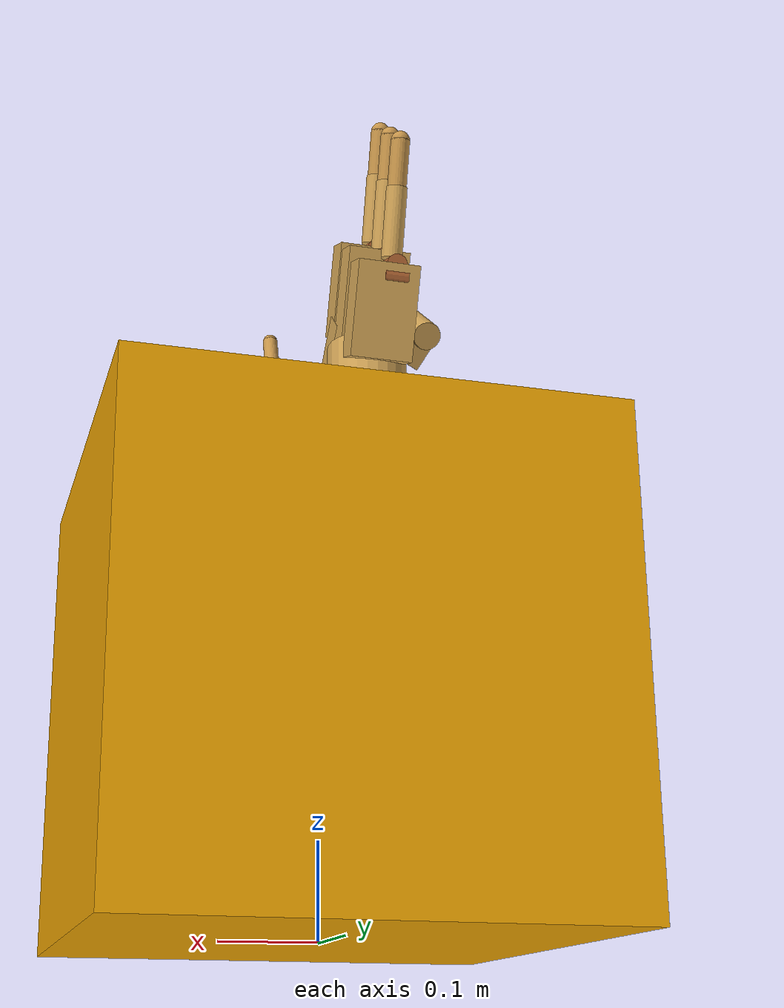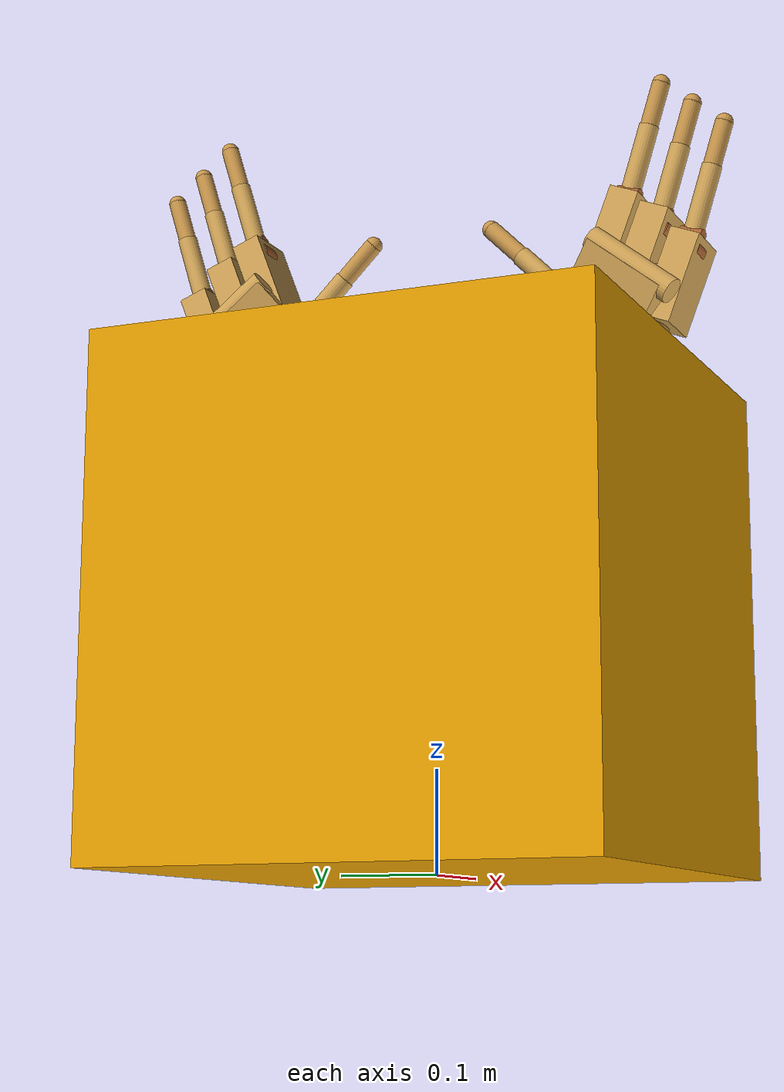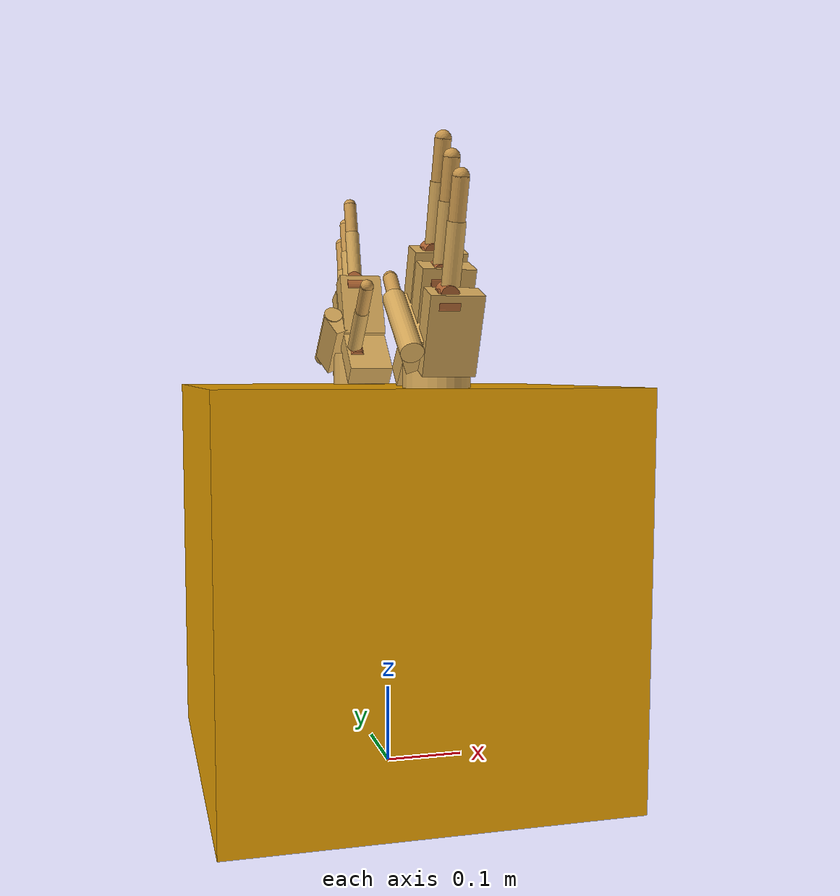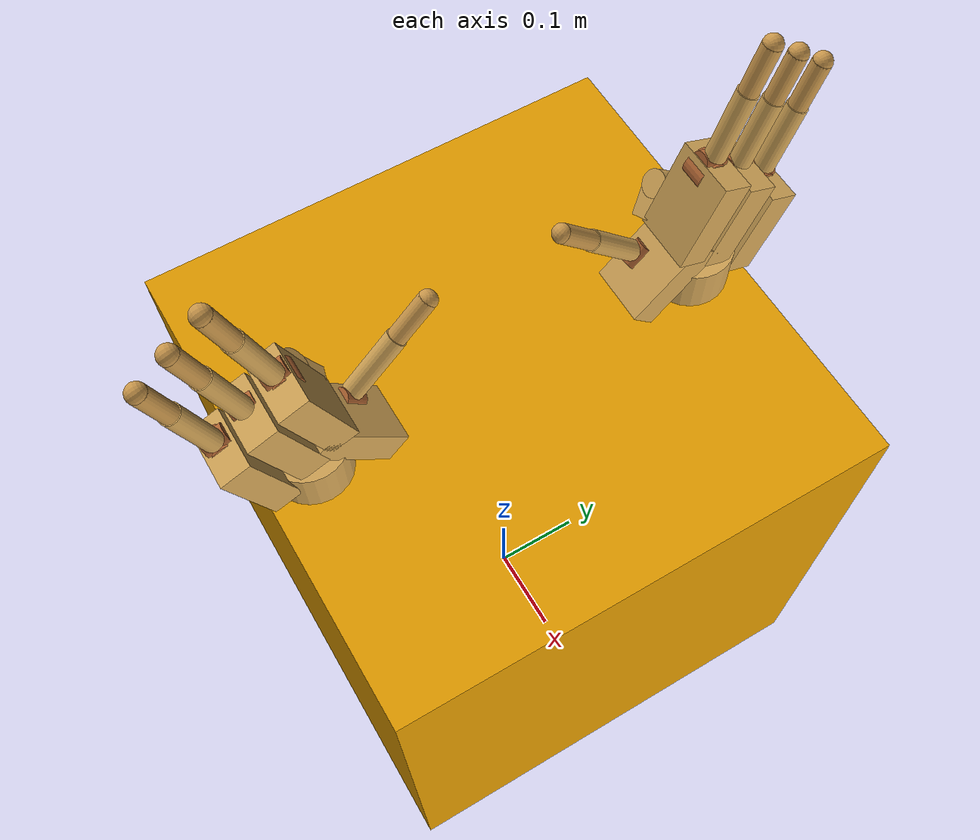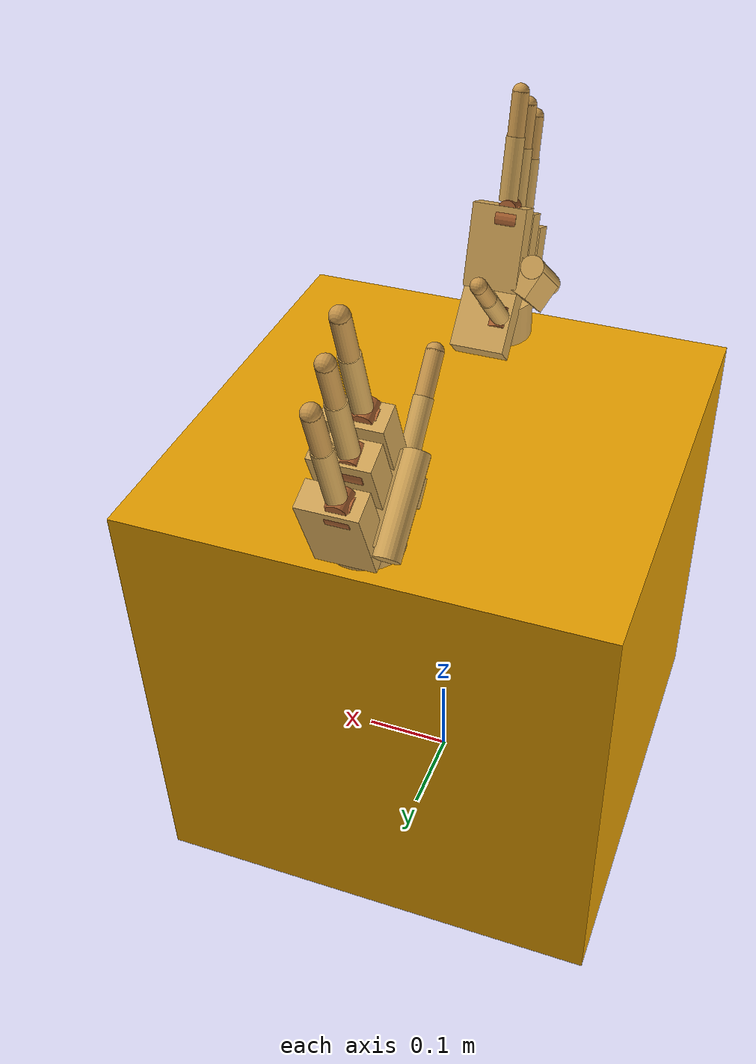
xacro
<robot xmlns:sensor="http://playerstage.sourceforge.net/gazebo/xmlschema/#sensor"
       xmlns:controller="http://playerstage.sourceforge.net/gazebo/xmlschema/#controller"
       xmlns:interface="http://playerstage.sourceforge.net/gazebo/xmlschema/#interface"
       xmlns:xacro="http://www.ros.org/wiki/xacro"
       name="humanoid" >

  <!-- Commenting out urdf with meshes, using simple collision shapes instead -->
  <xacro:include filename="$(find sandia_hand_description)/urdf/sandia_hand_simple_shapes.urdf.xacro" />

  <link name="base">
    <inertial>
        <mass value="0.1" />
        <origin xyz="0 0 0.25" rpy="0 0 0" />
        <inertia ixx="0.01" ixy="0" ixz="0" iyy="0.01" iyz="0" izz="0.01" />
    </inertial>
    <visual>
        <origin xyz="0 0 0.25" rpy="0 0 0" />
        <geometry>
            <box size="0.5 0.5 0.5" />
        </geometry>
    </visual>
    <collision>
        <origin xyz="0 0 0.25" rpy="0 0 0" />
        <geometry>
            <box size="0.5 0.5 0.5" />
        </geometry>
    </collision>
  </link>
  <joint name="r_hand_base" type="fixed">
    <parent link="base"/>
    <child link="r_hand"/>
  </joint>
  <link name="r_hand"/>
  <joint name="l_hand_base" type="fixed">
    <parent link="base"/>
    <child link="l_hand"/>
  </joint>
  <link name="l_hand"/>
  <xacro:sandia_hand side="right" parent="r_hand" reflect="1" joint_type="fixed" thumb_angle="1.57">
    <origin xyz="0 0.2 0.5" rpy="0 -1.57079 0"/>
  </xacro:sandia_hand>

  <xacro:sandia_hand side="left" parent="l_hand" reflect="-1" joint_type="fixed" thumb_angle="1.57">
    <origin xyz="0 -0.2 0.5" rpy="0 -1.57079 0"/>
  </xacro:sandia_hand>
</robot>

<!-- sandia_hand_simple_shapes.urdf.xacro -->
<robot name="sandia_hand"
       xmlns:xacro="http://www.ros.org/wiki/xacro">

  <xacro:include filename="$(find sandia_hand_description)/urdf/sandia_hand.gazebo.xacro" />
  <xacro:include filename="$(find sandia_hand_description)/urdf/sandia_hand.transmission.xacro" />

  <xacro:property name="M_pi" value="3.1415926535897931" />
  <xacro:property name="damping_coefficient_j0" value="1.0" />
  <xacro:property name="damping_coefficient_j1" value="1.0" />
  <xacro:property name="damping_coefficient_j2" value="1.0" />
  <xacro:property name="velocity_limit" value="-1" />

  <xacro:macro name="finger" params="idx x y z r p yaw side reflect joint_type">
    <link name="${side}_f${idx}_base">
      <origin xyz="0 0 0" rpy="0 0 0"/>
      <inertial>
        <!-- total mass is 2.303 kg, palm is about 1.303 kg, distribute the rest into _base -->
        <mass value="0.250"/>
        <origin xyz="0 0 0"/>
        <!-- model as sphere with radius of 1cm -->
        <inertia ixx="0.00001" ixy="0" ixz="0" iyy="0.00001" iyz="0" izz="0.00001"/>
      </inertial>
    </link>
    <link name="${side}_f${idx}_fixed_accel">
      <origin xyz="0 0 0" rpy="0 0 0"/>
      <inertial>
        <mass value="0.01"/>
        <origin xyz="0 0 0"/>
        <inertia ixx="0.000001" ixy="0" ixz="0" iyy="0.000001" iyz="0" izz="0.000001"/>
      </inertial>
    </link>
    <link name="${side}_f${idx}_0">
      <origin xyz="0 0 0" rpy="0 0 0"/>
      <inertial>
        <mass value="0.106"/>
        <origin xyz="0 0 0"/>
        <!-- solid cylinder -->
        <inertia ixx="0.000011925" ixy="0" ixz="0" iyy="0.00011505" iyz="0" izz="0.00011505"/>
      </inertial>
      <!-- begin simple shape approximation of f0 -->
      <collision>
        <origin xyz="0 0 0.003" rpy="0 0 0"/>
        <geometry>
          <cylinder radius="0.015" length="0.023" />
        </geometry>
      </collision>
      <collision>
        <origin xyz="0.011 0 0.003" rpy="${M_pi/2} 0 0"/>
        <geometry>
          <cylinder radius="0.01" length="0.023" />
        </geometry>
      </collision>
      <!--   end simple shape approximation of f0 -->
      <!-- begin visual shape approximation of f0 -->
      <visual>
        <origin xyz="0 0 0.003" rpy="0 0 0"/>
        <geometry>
          <cylinder radius="0.015" length="0.023" />
        </geometry>
        <material name="${side}_sandia_hand_skin_suntan">
          <color rgba="0.7 0.4 0.2 1.0"/>
        </material>
      </visual>
      <visual>
        <origin xyz="0.011 0 0.003" rpy="${M_pi/2} 0 0"/>
        <geometry>
          <cylinder radius="0.01" length="0.023" />
        </geometry>
        <material name="${side}_sandia_hand_skin_suntan">
          <color rgba="0.7 0.4 0.2 1.0"/>
        </material>
      </visual>
      <!--   end visual shape approximation of f0 -->
    </link>
    <link name="${side}_f${idx}_1">
      <origin xyz="0 0 0" rpy="0 0 0"/>
      <inertial>
        <mass value="0.033"/>
        <origin xyz="0 0 0"/>
        <!-- solid cylinder -->
        <inertia ixx="0.00000165" ixy="0" ixz="0" iyy="0.00001316975" iyz="0" izz="0.00001316975"/>
      </inertial>
      <!-- begin simple shape approximation of f1 -->
      <collision>
        <origin xyz="0.024 0 0" rpy="0 ${M_pi/2} 0"/>
        <geometry>
          <cylinder radius="0.01" length="0.067" />
        </geometry>
      </collision>
      <!--   end simple shape approximation of f1 -->
      <!-- begin visual shape approximation of f1 -->
      <visual>
        <origin xyz="0.024 0 0" rpy="0 ${M_pi/2} 0"/>
        <geometry>
          <cylinder radius="0.01" length="0.067" />
        </geometry>
        <material name="${side}_sandia_hand_skin">
          <color rgba="0.835 0.655 0.345 1.0"/>
        </material>
      </visual>
      <!--   end visual shape approximation of f1 -->
    </link>
    <link name="${side}_f${idx}_1_accel">
      <origin xyz="0 0 0" rpy="0 0 0"/>
      <inertial>
        <mass value="0.01"/>
        <origin xyz="0 0 0"/>
        <inertia ixx="0.000001" ixy="0" ixz="0" iyy="0.000001" iyz="0" izz="0.000001"/>
      </inertial>
    </link>
    <link name="${side}_f${idx}_2">
      <origin xyz="0 0 0" rpy="0 0 0"/>
      <inertial>
        <mass value="0.033"/>
        <origin xyz="0 0 0"/>
        <!-- solid cylinder -->
        <inertia ixx="0.0000013365" ixy="0" ixz="0" iyy="0.000009603" iyz="0" izz="0.000009603"/>
      </inertial>
      <!-- begin simple shape approximation of f2 -->
      <collision>
        <origin xyz="0.024 0 0" rpy="0 ${M_pi/2} 0"/>
        <geometry>
          <cylinder radius="0.009" length="0.057" />
        </geometry>
      </collision>
      <collision>
        <origin xyz="0.052 0 0" rpy="0 0 0"/>
        <geometry>
          <sphere radius="0.009" />
        </geometry>
      </collision>
      <!--   end simple shape approximation of f2 -->
      <!-- begin visual shape approximation of f2 -->
      <visual>
        <origin xyz="0.024 0 0" rpy="0 ${M_pi/2} 0"/>
        <geometry>
          <cylinder radius="0.009" length="0.057" />
        </geometry>
        <material name="${side}_sandia_hand_skin_suntan">
          <color rgba="0.8 0.6 0.3 1.0"/>
        </material>
      </visual>
      <visual>
        <origin xyz="0.052 0 0" rpy="0 0 0"/>
        <geometry>
          <sphere radius="0.009" />
        </geometry>
        <material name="${side}_sandia_hand_skin_suntan">
          <color rgba="0.8 0.6 0.3 1.0"/>
        </material>
      </visual>
    </link>
    <link name="${side}_f${idx}_2_accel">
      <origin xyz="0 0 0" rpy="0 0 0"/>
      <inertial>
        <mass value="0.01"/>
        <origin xyz="0 0 0"/>
        <inertia ixx="0.000001" ixy="0" ixz="0" iyy="0.000001" iyz="0" izz="0.000001"/>
      </inertial>
    </link>

    <joint name="${side}_f${idx}_base" type="fixed">
      <parent link="${side}_palm"/>
      <child link="${side}_f${idx}_base"/>
      <origin xyz="${x} ${y} ${z}" rpy="${r} ${p} ${yaw}"/>
    </joint>
    <joint name="${side}_f${idx}_j0" type="${joint_type}">
      <axis xyz="0 0 ${reflect}"/>
      <parent link="${side}_f${idx}_base"/>
      <child link="${side}_f${idx}_0"/>
      <limit lower="-${M_pi/2}" upper="${M_pi/2}" effort="11" velocity="${velocity_limit}"/>
      <safety_controller soft_lower_limit="${-1.57079-10.0}" soft_upper_limit="${1.57079+10.0}" k_position="1000.0" k_velocity="1000.0"/>
      <dynamics damping="${damping_coefficient_j0}"/>
      <origin xyz="0 0 0" rpy="0 0 0"/>
    </joint>
    <joint name="${side}_f${idx}_j1" type="${joint_type}">
      <axis xyz="0 0 1"/>
      <parent link="${side}_f${idx}_0"/>
      <child link="${side}_f${idx}_1"/>
      <limit lower="-${M_pi/2}" upper="${M_pi/2}" effort="28" velocity="${velocity_limit}"/>
      <safety_controller soft_lower_limit="${-1.57079-10.0}" soft_upper_limit="${1.57079+10.0}" k_position="1000.0" k_velocity="1000.0"/>
      <dynamics damping="${damping_coefficient_j1}"/>
      <origin xyz="0.028 0 0" rpy="${M_pi/2} 0 0"/>
    </joint>
    <joint name="${side}_f${idx}_j2" type="${joint_type}">
      <axis xyz="0 0 1"/>
      <parent link="${side}_f${idx}_1"/>
      <child link="${side}_f${idx}_2"/>
      <origin xyz="0.05 0 0" rpy="0 0 0"/>
      <safety_controller soft_lower_limit="${-1.57079-10.0}" soft_upper_limit="${1.57079+10.0}" k_position="1000.0" k_velocity="1000.0"/>
      <dynamics damping="${damping_coefficient_j2}"/>
      <limit lower="-${M_pi/2}" upper="${M_pi/2}" effort="28" velocity="${velocity_limit}"/>
    </joint>

    <joint name="${side}_f${idx}_fixed_accel" type="fixed">
      <parent link="${side}_f${idx}_base"/>
      <child link="${side}_f${idx}_fixed_accel"/>
      <origin xyz="-0.05 0 0" rpy="0 0 0"/>
    </joint>
    <joint name="${side}_f${idx}_1_accel" type="fixed">
      <parent link="${side}_f${idx}_1"/>
      <child link="${side}_f${idx}_1_accel"/>
      <origin xyz="0.03 0 0" rpy="-${M_pi/2} 0 0"/>
    </joint>
    <joint name="${side}_f${idx}_2_accel" type="fixed">
      <parent link="${side}_f${idx}_2"/>
      <child link="${side}_f${idx}_2_accel"/>
      <origin xyz="0.04 0 0" rpy="-${M_pi/2} 0 0"/>
    </joint>

    <xacro:finger_transmission side="${side}" idx="${idx}" x="${x}" y="${y}" z="${z}" r="${r}" p="${p}" yaw="${yaw}"/>
    <xacro:finger_gazebo side="${side}" idx="${idx}"/>
  </xacro:macro>

  <xacro:macro name="sandia_hand" params="side parent reflect joint_type thumb_angle *origin">
    <link name="${side}_palm">
      <origin xyz="0 0 0" rpy="0 0 0"/>
      <inertial>
        <mass value="1.303"/>
        <origin xyz="0 0 0"/>
        <!-- solid sphere with 5cm radius -->
        <inertia ixx="0.001303" ixy="0" ixz="0" iyy="0.001303" iyz="0" izz="0.001303"/>
      </inertial>
      <!-- begin simple shape approximation of palm -->
      <collision>
        <origin xyz="0.069 ${0.016 * reflect} 0.038" rpy="0 ${M_pi/2} ${-0.9 * reflect}"/>
        <geometry>
          <cylinder radius="0.013" length="0.100" />
        </geometry>
      </collision>
      <collision>
        <origin xyz="0.064 ${0.008 * reflect} 0.021" rpy="${0.41 * reflect} 0 ${-0.9 * reflect}"/>
        <geometry>
          <box size="0.09 .035 .05" />
        </geometry>
      </collision>
      <collision>
        <origin xyz="0.02 0 -0.005" rpy="0 ${M_pi/2} 0"/>
        <geometry>
          <cylinder radius="0.038" length="0.05" />
        </geometry>
      </collision>
      <collision>
        <origin xyz="0.11 ${-0.01*reflect} -0.005" rpy="0 0 ${0.37*reflect}"/>
        <geometry>
          <box size="0.09 .03 .06" />
        </geometry>
      </collision>
      <collision>
        <origin xyz="0.09 ${0.02*reflect} -0.005" rpy="0 0 ${0.37*reflect}"/>
        <geometry>
          <box size="0.09 .03 .06" />
        </geometry>
      </collision>
      <collision>
        <origin xyz="0.060 ${0.050*reflect} -0.005" rpy="0 0 ${0.37*reflect}"/>
        <geometry>
          <box size="0.09 .03 .06" />
        </geometry>
      </collision>
      <collision>
        <origin xyz="0.044 ${-0.04*reflect} -0.005" rpy="0 0 ${0.79*reflect}"/>
        <geometry>
          <box size="0.09 .03 .06" />
        </geometry>
      </collision>
      <!--   end simple shape approximation of palm -->
      <!-- begin visual shape approximation of palm -->
      <visual>
        <origin xyz="0.069 ${0.016*reflect} 0.038" rpy="0 ${M_pi/2} ${-0.9*reflect}"/>
        <geometry>
          <cylinder radius="0.013" length="0.100" />
        </geometry>
        <material name="${side}_sandia_hand_skin">
          <color rgba="0.835 0.655 0.345 1.0"/>
        </material>
      </visual>
      <visual>
        <origin xyz="0.064 ${0.008*reflect} 0.021" rpy="${0.41 * reflect} 0 ${-0.9*reflect}"/>
        <geometry>
          <box size="0.09 .035 .05" />
        </geometry>
        <material name="${side}_sandia_hand_skin">
          <color rgba="0.835 0.655 0.345 1.0"/>
        </material>
      </visual>
      <visual>
        <origin xyz="0.02 0 -0.005" rpy="0 ${M_pi/2} 0"/>
        <geometry>
          <cylinder radius="0.038" length="0.05" />
        </geometry>
        <material name="${side}_sandia_hand_skin">
          <color rgba="0.835 0.655 0.345 1.0"/>
        </material>
      </visual>
      <visual>
        <origin xyz="0.11 ${-0.01*reflect} -0.005" rpy="0 0 ${0.37*reflect}"/>
        <geometry>
          <box size="0.09 .03 .06" />
        </geometry>
        <material name="${side}_sandia_hand_skin">
          <color rgba="0.835 0.655 0.345 1.0"/>
        </material>
      </visual>
      <visual>
        <origin xyz="0.09 ${0.02*reflect} -0.005" rpy="0 0 ${0.37*reflect}"/>
        <geometry>
          <box size="0.09 .03 .06" />
        </geometry>
        <material name="${side}_sandia_hand_skin">
          <color rgba="0.835 0.655 0.345 1.0"/>
        </material>
      </visual>
      <visual>
        <origin xyz="0.060 ${0.050*reflect} -0.005" rpy="0 0 ${0.37*reflect}"/>
        <geometry>
          <box size="0.09 .03 .06" />
        </geometry>
        <material name="${side}_sandia_hand_skin">
          <color rgba="0.835 0.655 0.345 1.0"/>
        </material>
      </visual>
      <visual>
        <origin xyz="0.044 ${-0.04*reflect} -0.005" rpy="0 0 ${0.79*reflect}"/>
        <geometry>
          <box size="0.09 .03 .06" />
        </geometry>
        <material name="${side}_sandia_hand_skin">
          <color rgba="0.835 0.655 0.345 1.0"/>
        </material>
      </visual>
      <!--   end visual shape approximation of palm -->
    </link>

    <joint name="${side}_sandia_hand_joint" type="fixed">
      <parent link="${parent}"/>
      <child link="${side}_palm"/>
      <insert_block name="origin" />
    </joint>

    <xacro:finger side="${side}" idx="0" x="0.140" y="0.00000" z="0" r="0" p="0" yaw="${0.3*reflect}" reflect="${reflect}" joint_type="${joint_type}"/>
    <xacro:finger side="${side}" idx="1" x="0.115" y="${0.03122*reflect}" z="0" r="0" p="0" yaw="${0.3*reflect}" reflect="${reflect}" joint_type="${joint_type}"/>
    <xacro:finger side="${side}" idx="2" x="0.090" y="${0.06245*reflect}" z="0" r="0" p="0" yaw="${0.3*reflect}" reflect="${reflect}" joint_type="${joint_type}"/>
    <xacro:finger side="${side}" idx="3" x="0.03995" y="${-0.04383*reflect}" z="0.014" r="0" p="-${M_pi/2 + thumb_angle}" yaw="${-(2.3562+thumb_angle)*reflect}" reflect="${reflect}" joint_type="${joint_type}"/>

    <xacro:sandia_hand_gazebo side="${side}" />
    <xacro:sandia_hand_cameras_gazebo side="${side}" reflect="${reflect}" parent="${parent}" />
    <xacro:sandia_hand_tactile_sensors_gazebo side="${side}" parent="${parent}" />
    <xacro:sandia_hand_imu_sensor_gazebo parent="${parent}" />
  </xacro:macro>
</robot>

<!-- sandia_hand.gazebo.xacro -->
<robot name="sandia_hand"
       xmlns:xacro="http://www.ros.org/wiki/xacro">

  <xacro:macro name="finger_gazebo" params="side idx">
    <gazebo reference ="${side}_f${idx}_base">
      <mu1>1.1</mu1>
      <mu2>1.1</mu2>
      <kp>1000000.0</kp>
      <kd>10.0</kd>
      <maxVel>0.1</maxVel>
      <minDepth>0.00</minDepth>
      <maxContacts>1</maxContacts>
      <material>Gazebo/FlatBlack</material>
    </gazebo>
    <gazebo reference="${side}_f${idx}_0">
      <mu1>1.1</mu1>
      <mu2>1.1</mu2>
      <kp>1000000.0</kp>
      <kd>10.0</kd>
      <maxVel>0.1</maxVel>
      <minDepth>0.00</minDepth>
      <maxContacts>1</maxContacts>
      <material>Gazebo/FlatBlack</material>
    </gazebo>
    <gazebo reference="${side}_f${idx}_1">
      <mu1>1.1</mu1>
      <mu2>1.1</mu2>
      <kp>1000000.0</kp>
      <kd>10.0</kd>
      <maxVel>0.1</maxVel>
      <minDepth>0.00</minDepth>
      <maxContacts>1</maxContacts>
      <material>Gazebo/FlatBlack</material>
    </gazebo>
    <gazebo reference="${side}_f${idx}_2">
      <mu1>1.1</mu1>
      <mu2>1.1</mu2>
      <kp>1000000.0</kp>
      <kd>10.0</kd>
      <maxVel>0.1</maxVel>
      <minDepth>0.00</minDepth>
      <maxContacts>1</maxContacts>
      <material>Gazebo/FlatBlack</material>
    </gazebo>
    <gazebo reference="${side}_f${idx}_j0">
      <cfmDamping>1</cfmDamping>
    </gazebo>
    <gazebo reference="${side}_f${idx}_j1">
      <cfmDamping>1</cfmDamping>
    </gazebo>
    <gazebo reference="${side}_f${idx}_j2">
      <cfmDamping>1</cfmDamping>
    </gazebo>
  </xacro:macro>
  <xacro:macro name="sandia_hand_gazebo" params="side">
    <gazebo reference="${side}_palm">
      <mu1>1.1</mu1>
      <mu2>1.1</mu2>
      <kp>1000000.0</kp>
      <kd>1.0</kd>
      <maxVel>0.1</maxVel>
      <minDepth>0.00</minDepth>
      <maxContacts>6</maxContacts>
      <material>Gazebo/FlatBlack</material>
    </gazebo>
  </xacro:macro>
  <!-- begin cameras -->
  <xacro:property name="M_pi" value="3.1415926535897931" />
  <!-- the following properties are used to adjust the camera location -->
  <!-- theta specifies the inclination of the stereo axis -->
  <!-- sin_theta and cos_theta are manually entered since xacro doesn't do trig -->
  <xacro:property name="theta" value="0.6708" />
  <xacro:property name="sin_theta" value="0.62161284558" />
  <xacro:property name="cos_theta" value="0.78332462632" />
  <!-- stereo offset of 40 mm -->
  <xacro:property name="stereo_offset" value="0.04" />
  <!-- cam_d1 and cam_L1 are lengths that adjust the camera position -->
  <xacro:property name="cam_d1" value="0.1" />
  <xacro:property name="cam_L1" value="0.09" />
  <!-- 72 degrees -->
  <xacro:property name="horizontal_fov_degrees" value="72.0" />
  <xacro:property name="image_width" value="752" />
  <xacro:property name="image_height" value="480" />
  <xacro:property name="image_format" value="L8" />
  <xacro:property name="clip_near" value="0.02" />
  <xacro:property name="clip_far" value="100" />
  <xacro:property name="noise_type" value="gaussian" />
  <xacro:property name="noise_mean" value="0.0" />
  <xacro:property name="noise_stddev" value="0.007" />
  <xacro:macro name="sandia_hand_cameras_gazebo" params="side reflect parent">
    <joint name="${side}_palm_left_camera_frame_joint" type="fixed">
      <origin xyz="${(cam_L1+reflect*stereo_offset/2)*sin_theta} ${reflect*(cam_d1-(cam_L1+reflect*stereo_offset/2)*cos_theta)} 0.025"
              rpy="${reflect*theta} -${M_pi/2} ${M_pi}"/>
      <parent link="${side}_palm"/>
      <child link="${side}_palm_left_camera_frame"/>
    </joint>
    <link name="${side}_palm_left_camera_frame">
      <inertial>
        <mass value="0.01"/>
        <origin xyz="0 0 0"/>
        <inertia ixx="0.0001" ixy="0.0" ixz="0.0" iyy="0.0001" iyz="0.0" izz="0.0001"/>
      </inertial>
      <visual group="default">
        <origin xyz="0 0 0" rpy="0 0 0"/>
        <geometry>
          <box size="0.003 0.010 0.007" />
        </geometry>
      </visual>
    </link>
    <joint name="${side}_palm_left_camera_optical_frame_joint" type="fixed">
      <origin rpy="${-M_pi/2} 0.0 ${-M_pi/2}" xyz="0 0 0"/>
      <parent link="${side}_palm_left_camera_frame"/>
      <child link="${side}_palm_left_camera_optical_frame"/>
    </joint>
    <link name="${side}_palm_left_camera_optical_frame"/>
    <gazebo reference="${side}_palm_left_camera_frame">
      <sensor name="${side}_palm_stereo_camera" type="multicamera">
        <update_rate>30.0</update_rate>
        <camera name="left">
          <horizontal_fov>${horizontal_fov_degrees * M_pi / 180}</horizontal_fov>
          <image>
            <width>${image_width}</width>
            <height>${image_height}</height>
            <format>${image_format}</format>
          </image>
          <clip>
            <near>${clip_near}</near>
            <far>${clip_far}</far>
          </clip>
          <noise>
            <type>${noise_type}</type>
            <mean>${noise_mean}</mean>
            <stddev>${noise_stddev}</stddev>
          </noise>
        </camera>
        <camera name="right">
          <pose>0 ${-stereo_offset} 0  0 0 0</pose>
          <horizontal_fov>${horizontal_fov_degrees * M_pi / 180}</horizontal_fov>
          <image>
            <width>${image_width}</width>
            <height>${image_height}</height>
            <format>${image_format}</format>
          </image>
          <clip>
            <near>${clip_near}</near>
            <far>${clip_far}</far>
          </clip>
          <noise>
            <type>${noise_type}</type>
            <mean>${noise_mean}</mean>
            <stddev>${noise_stddev}</stddev>
          </noise>
        </camera>
        <plugin filename="libgazebo_ros_multicamera.so" name="stereo_camera_controller">
          <alwaysOn>true</alwaysOn>
          <updateRate>0.0</updateRate>
          <cameraName>sandia_hands/${parent}</cameraName>
          <imageTopicName>image_raw</imageTopicName>
          <cameraInfoTopicName>camera_info</cameraInfoTopicName>
          <frameName>${side}_palm_left_camera_optical_frame</frameName>
          <hackBaseline>${stereo_offset}</hackBaseline>
          <distortionK1>0.0</distortionK1>
          <distortionK2>0.0</distortionK2>
          <distortionK3>0.0</distortionK3>
          <distortionT1>0.0</distortionT1>
          <distortionT2>0.0</distortionT2>
        </plugin>
      </sensor>
    </gazebo>
    <joint name="${side}_palm_right_camera_frame_joint" type="fixed">
      <origin xyz="${(cam_L1-reflect*stereo_offset/2)*sin_theta} ${reflect*(cam_d1-(cam_L1-reflect*stereo_offset/2)*cos_theta)} 0.025"
              rpy="${reflect*theta} -${M_pi/2} ${M_pi}"/>
      <parent link="${side}_palm"/>
      <child link="${side}_palm_right_camera_frame"/>
    </joint>
    <link name="${side}_palm_right_camera_frame">
      <inertial>
        <mass value="0.01"/>
        <origin xyz="0 0 0"/>
        <inertia ixx="0.0001" ixy="0.0" ixz="0.0" iyy="0.0001" iyz="0.0" izz="0.0001"/>
      </inertial>
      <visual group="default">
        <origin xyz="0 0 0" rpy="0 0 0"/>
        <geometry>
          <box size="0.003 0.010 0.007" />
        </geometry>
      </visual>
    </link>
    <joint name="${side}_palm_right_camera_optical_frame_joint" type="fixed">
      <origin rpy="${-M_pi/2} 0.0 ${-M_pi/2}" xyz="0 0 0"/>
      <parent link="${side}_palm_right_camera_frame"/>
      <child link="${side}_palm_right_camera_optical_frame"/>
    </joint>
    <link name="${side}_palm_right_camera_optical_frame"/>
  </xacro:macro>
  <!-- end cameras -->
  <xacro:macro name="sandia_hand_gazebo_controller" params="side">
    <gazebo>
      <plugin filename="libgazebo_ros_controller_manager.so" name="gazebo_ros_controller_manager">
        <alwaysOn>true</alwaysOn>
        <updateRate>1000.0</updateRate>
      </plugin>
    </gazebo>
  </xacro:macro>

  <xacro:macro name="sandia_hand_tactile_sensors_gazebo" params="side parent" >
    <gazebo>
      <plugin filename="libContactModelPlugin.so" name="sandia_contact_plugin">
         <contact>
          <collision>${parent}::${parent}_collision_${side}_palm</collision>
          <collision>${parent}::${parent}_collision_${side}_palm_1</collision>
          <collision>${parent}::${parent}_collision_${side}_palm_3</collision>
          <collision>${parent}::${parent}_collision_${side}_palm_4</collision>
          <collision>${parent}::${parent}_collision_${side}_palm_5</collision>
          <collision>${side}_f0_1::${side}_f0_1_collision</collision>
          <collision>${side}_f0_2::${side}_f0_2_collision</collision>
          <collision>${side}_f1_1::${side}_f1_1_collision</collision>
          <collision>${side}_f1_2::${side}_f1_2_collision</collision>
          <collision>${side}_f2_1::${side}_f2_1_collision</collision>
          <collision>${side}_f2_2::${side}_f2_2_collision</collision>
          <collision>${side}_f3_1::${side}_f3_1_collision</collision>
          <collision>${side}_f3_2::${side}_f3_2_collision</collision>
        </contact>
      </plugin>
    </gazebo>
  </xacro:macro>

  <xacro:macro name="sandia_hand_imu_sensor_gazebo" params="parent" >
  <gazebo reference="${parent}">
    <sensor name="imu_sensor" type="imu">
      <always_on>1</always_on>
      <update_rate>1000.0</update_rate>
      <imu>
        <noise>
          <type>gaussian</type>
          <rate>
            <mean>0.0</mean>
            <stddev>2e-4</stddev>
            <bias_mean>0.0000075</bias_mean>
            <bias_stddev>0.0000008</bias_stddev>
          </rate>
          <accel>
            <mean>0.0</mean>
            <stddev>1.7e-2</stddev>
            <bias_mean>0.1</bias_mean>
            <bias_stddev>0.001</bias_stddev>
          </accel>
        </noise>
      </imu>
    </sensor>
  </gazebo>
  </xacro:macro>

</robot>
